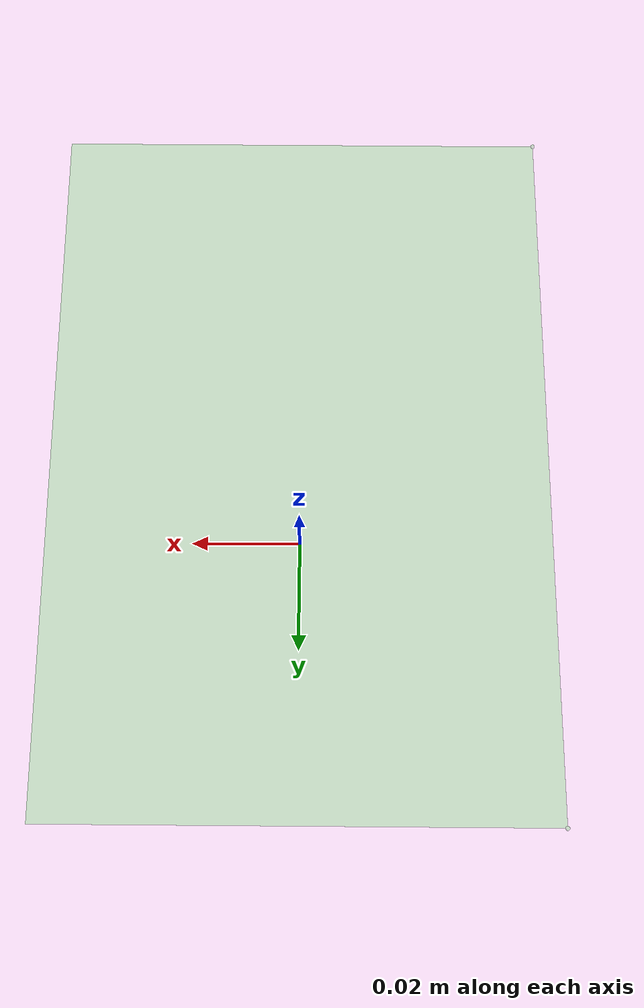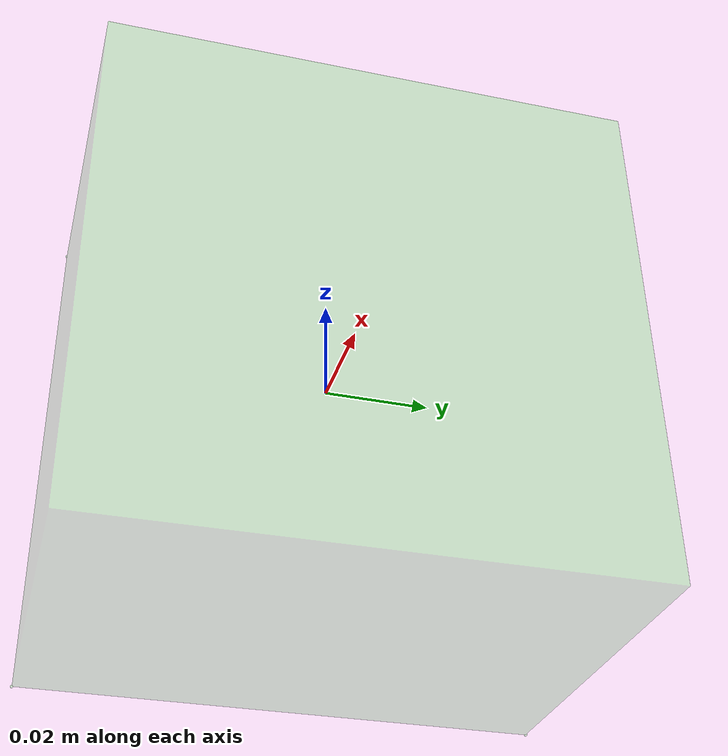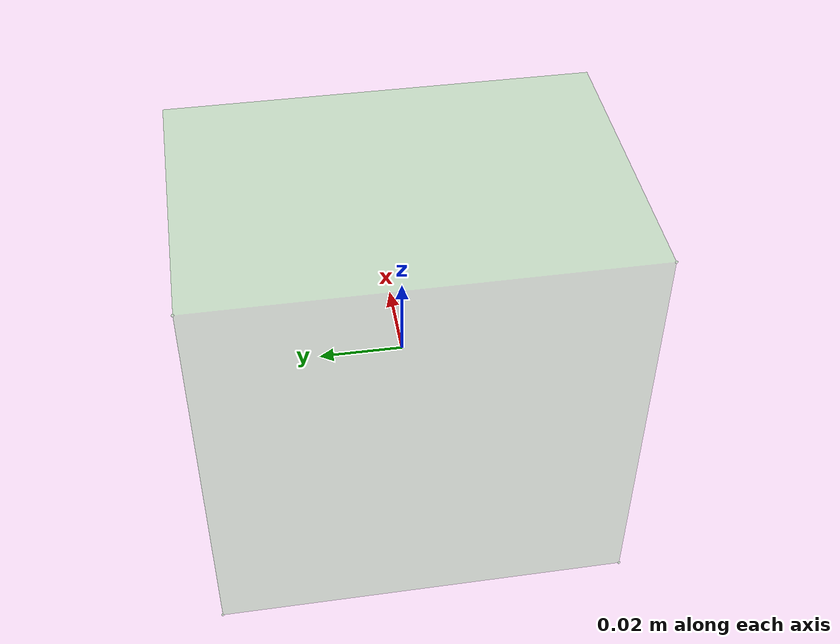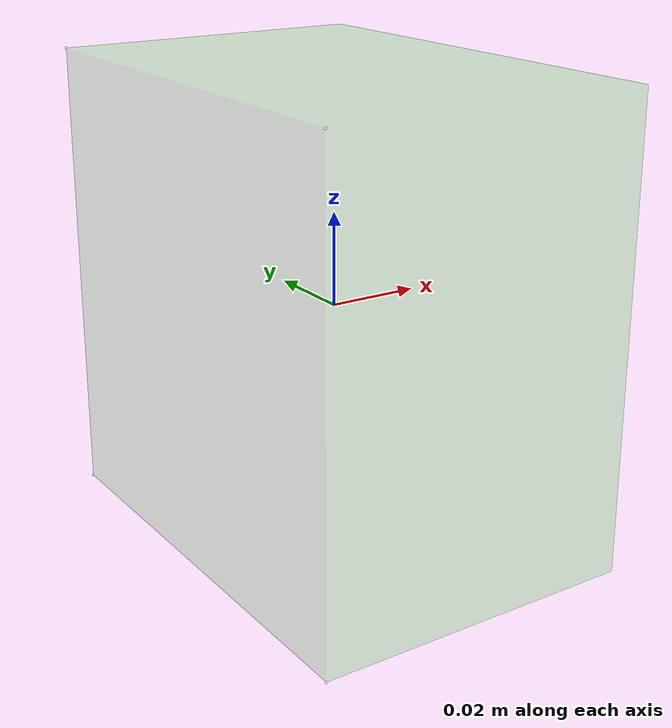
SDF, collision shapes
<?xml version="1.0"?>
<sdf version='1.6'>
<model name="brick">
  <link name="brick_base_link">
  </link>
  <link name="brick_dummy_link1">
    <inertial>
      <pose frame=''>0 0 0 0 0 0 </pose>
      <mass>0.028</mass>
      <inertia>
        <ixx>1.17e-5</ixx>
        <ixy>0</ixy>
        <ixz>0</ixz>
        <iyy>1.9e-5</iyy>
        <iyz>0</iyz>
        <izz>1.9e-5</izz>
      </inertia>
    </inertial>
  </link>
  <joint name="brick_translate_y_joint" type="prismatic">
    <child> brick_dummy_link1 </child>
    <parent> brick_base_link </parent>
    <axis>
      <xyz> 0 1 0 </xyz>
      <limit>
        <!-- Drake parses a zero effort joint as an un-actuated joint. -->
        <effort> 0 </effort>
      </limit>
    </axis>
  </joint>
  <link name="brick_dummy_link2">
    <inertial>
      <pose frame=''>0 0 0 0 0 0 </pose>
      <mass>1e-10</mass>
      <inertia>
        <ixx>1e-10</ixx>
        <ixy>0</ixy>
        <ixz>0</ixz>
        <iyy>1e-10</iyy>
        <iyz>0</iyz>
        <izz>1e-10</izz>
      </inertia>
    </inertial>
  </link>
  <joint name="brick_translate_z_joint" type="prismatic">
    <child> brick_dummy_link2 </child>
    <parent> brick_dummy_link1 </parent>
    <axis>
      <xyz> 0 0 1 </xyz>
      <limit>
        <!-- Drake parses a zero effort joint as an un-actuated joint. -->
        <effort> 0 </effort>
      </limit>
    </axis>
  </joint>
  <link name="brick_link">
    <inertial>
      <pose frame=''>0 0 0 0 0 0 </pose>
      <mass>0.028</mass>
        <inertia>
          <ixx>1.17e-5</ixx>
          <ixy>0</ixy>
          <ixz>0</ixz>
          <iyy>1.9e-5</iyy>
          <iyz>0</iyz>
          <izz>1.9e-5</izz>
        </inertia>
    </inertial>
    <visual name='brick_visual_1'>
      <pose frame=''>0 0 0.025 0 0 0</pose>
      <geometry>
        <box>
          <size>0.07 0.1 0.05</size>
        </box>
      </geometry>
      <material>
        <diffuse>0 0.8 0 0.2</diffuse>
      </material>
    </visual>
    <visual name='brick_visual_2'>
      <pose frame=''>0 0 -0.025 0 0 0</pose>
      <geometry>
        <box>
          <size>0.07 0.1 0.05</size>
        </box>
      </geometry>
      <material>
        <diffuse>0 0 0.8 0.2</diffuse>
      </material>
    </visual>
    <visual name='brick_perception_texture'>
      <!-- The small number 0.0001 here is to lift the perception texture on top of the above two illustration visuals. This has minimum impact on what the camera sees. -->
      <pose>0.0001 0 0 0 1.57 0</pose>
        <geometry>
          <mesh>
            <uri>./meshes/simple_brick.obj</uri>
            <scale>1.0 1.0 1.0</scale>
          </mesh>
        </geometry>
        <material>
          <drake:diffuse_map>./textures/simple_brick_color.png</drake:diffuse_map>
          <drake:roughness_map>./textures/simple_brick_roughness.png</drake:roughness_map>
          <drake:metalness_map>./textures/simple_brick_metalness.png</drake:metalness_map>
        </material>
    </visual>
    <collision name='box_collision'>
      <pose>0 0 0 0 0 0</pose>
      <geometry>
        <box>
          <size>0.07 0.1 0.1</size>
        </box>
      </geometry>
    </collision>
    <collision name='sphere1_collision'>
      <pose>-0.035 0.05 0.05 0 0 0</pose>
      <geometry>
        <sphere>
          <radius>.0003</radius>
        </sphere>
      </geometry>
    </collision>
    <collision name='sphere2_collision'>
      <pose>-0.035 -0.05 0.05 0 0 0</pose>
      <geometry>
        <sphere>
          <radius>.0003</radius>
        </sphere>
      </geometry>
    </collision>
    <collision name='sphere3_collision'>
      <pose>-0.035 0.05 -0.05 0 0 0</pose>
      <geometry>
        <sphere>
          <radius>.0003</radius>
        </sphere>
      </geometry>
    </collision>
    <collision name='sphere4_collision'>
      <pose>-0.035 -0.05 -0.05 0 0 0</pose>
      <geometry>
        <sphere>
          <radius>.0003</radius>
        </sphere>
      </geometry>
    </collision>
   </link>
   <joint name="brick_revolute_x_joint" type="revolute">
     <child> brick_link </child>
     <parent> brick_dummy_link2 </parent>
     <axis>
       <xyz> 1 0 0 </xyz>
       <limit>
         <!-- Drake parses a zero effort joint as an un-actuated joint. -->
         <effort> 0 </effort>
       </limit>
     </axis>
   </joint>
</model>
</sdf>
